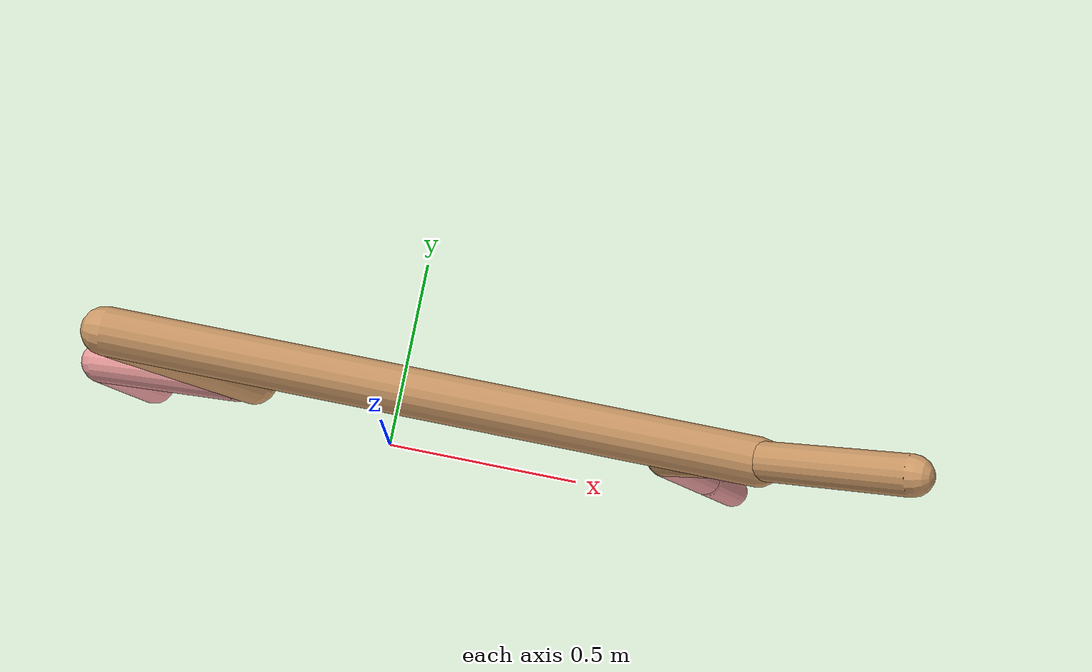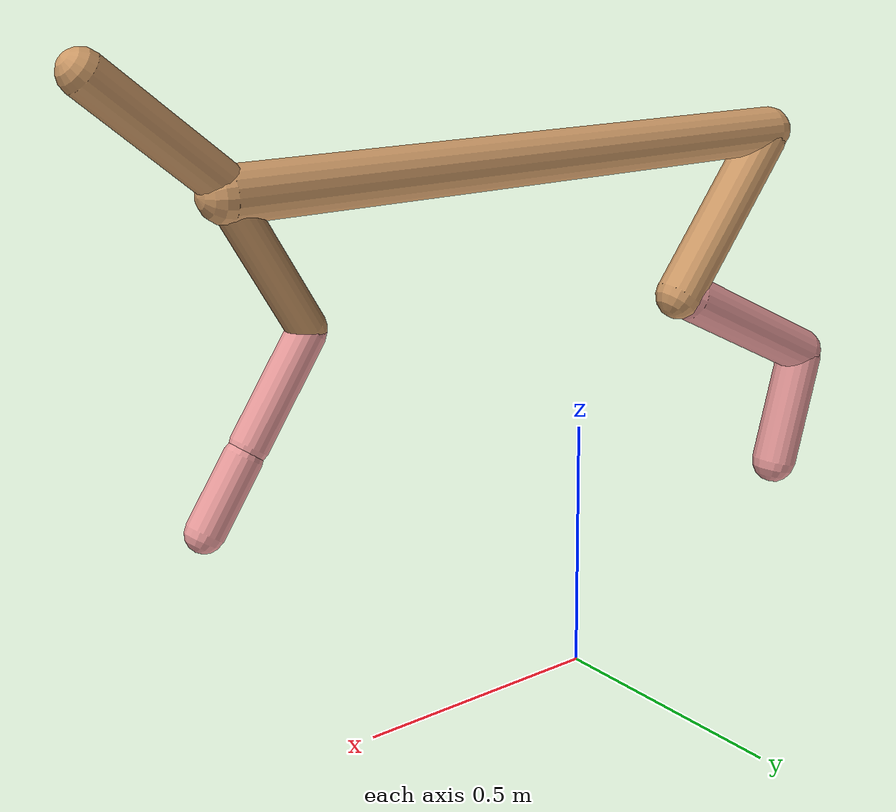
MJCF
<mujoco model="cheetah">
  <compiler angle="radian" coordinate="local" inertiafromgeom="true" settotalmass="14" />
  <default>
    <joint armature=".1" damping=".01" limited="true" solimplimit="0 .8 .03" solreflimit=".02 1" stiffness="8" />
    <geom conaffinity="0" condim="3" contype="1" friction="0.8 .1 .1" rgba="0.8 0.6 .4 1" solimp="0.0 0.8 0.01" solref="0.02 1" />
    <motor ctrllimited="true" ctrlrange="-1 1" />
  </default>
  <size nstack="300000" nuser_geom="1" />
  <option gravity="0 0 -9.81" timestep="0.01" />
  <worldbody>
    <body name="torso" pos="0.0 0.0 1.03197349794087">
      <joint armature="0" axis="1 0 0" damping="0" limited="false" name="ignorex" pos="0 0 0" stiffness="0" type="slide" />
      <joint armature="0" axis="0 0 1" damping="0" limited="false" name="ignorez" pos="0 0 0" stiffness="0" type="slide" />
      <joint armature="0" axis="0 1 0" damping="0" limited="false" name="ignorey" pos="0 0 0" stiffness="0" type="hinge" />
      <geom fromto="-0.5 0.0 0.0 0.7361379191736689 0.0 0.0" name="torso" size="0.04732163481354944" type="capsule" />
      <geom axisangle="0 1 0 .87" name="head" pos="0.836137919173669 0.0 0.1" size="0.03740451140484352 0.15" type="capsule" />

      <body name="bthigh" pos="-.5 0 0">
        <joint axis="0 1 0" damping="6" name="bthigh" pos="0 0 0" range="-.52 1.05" stiffness="240" type="hinge" />
        <geom axisangle="0 1 0 -3.8" name="bthigh" pos="0.12487214663700164 0.0 -0.16233379062810213" size="0.047338087929166404 0.18579335356053062" type="capsule" />
        <body name="bshin" pos="0.2097442932740033 0.0 -0.31466758125620425">
          <joint axis="0 1 0" damping="4.5" name="bshin" pos="0 0 0" range="-.785 .785" stiffness="180" type="hinge" />
          <geom axisangle="0 1 0 -2.03" name="bshin" pos="-0.17774484617580535 0.0 -0.08887242308790268" rgba="0.9 0.6 0.6 1" size="0.047338087929166404 0.19220002092468685" type="capsule" />
          <body name="bfoot" pos="-0.3554896923516107 0.0 -0.17774484617580535">
            <joint axis="0 1 0" damping="3" name="bfoot" pos="0 0 0" range="-.4 .785" stiffness="120" type="hinge" />
            <geom axisangle="0 1 0 -.27" name="bfoot" pos="0.037813799187018216 0.0 -0.1222646173713589" rgba="0.9 0.6 0.6 1" size="0.047338087929166404 0.12044534644613711" type="capsule" />
            <inertial mass="10" />
          </body>
        </body>
      </body>
      <body name="fthigh" pos="0.736137919173669 0.0 0.0">
        <joint axis="0 1 0" damping="4.5" name="fthigh" pos="0 0 0" range="-1.5 0.8" stiffness="180" type="hinge" />
        <geom axisangle="0 1 0 .52" name="fthigh" pos="-0.06941667678955633 0.0 -0.11900001735352514" size="0.03386008373031195 0.1318423164244522" type="capsule" />
        <body name="fshin" pos="-0.13883335357911267 0.0 -0.23800003470705028">
          <joint axis="0 1 0" damping="3" name="fshin" pos="0 0 0" range="-1.2 1.1" stiffness="120" type="hinge" />
          <geom axisangle="0 1 0 -.6" name="fshin" pos="0.0644597882964711 0.0 -0.08925201456434459" rgba="0.9 0.6 0.6 1" size="0.03386008373031195 0.10507733489467617" type="capsule" />
          <body name="ffoot" pos="0.1289195765929422 0.0 -0.17850402912868918">
            <joint axis="0 1 0" damping="1.5" name="ffoot" pos="0 0 0" range="-3.1 -0.3" stiffness="60" type="hinge" />
            <geom axisangle="0 1 0 -.6" name="ffoot" pos="0.04467051253588609 0.0 -0.0694874639447117" rgba="0.9 0.6 0.6 1" size="0.03386008373031195 0.06939069285497484" type="capsule" />
            <inertial mass="10" />
          </body>
        </body>
      </body>
    </body>
  </worldbody>
  <actuator>
    <motor gear="120" joint="bthigh" name="bthigh" />
    <motor gear="90" joint="bshin" name="bshin" />
    <motor gear="60" joint="bfoot" name="bfoot" />
    <motor gear="120" joint="fthigh" name="fthigh" />
    <motor gear="60" joint="fshin" name="fshin" />
    <motor gear="30" joint="ffoot" name="ffoot" />
  </actuator>
</mujoco>
